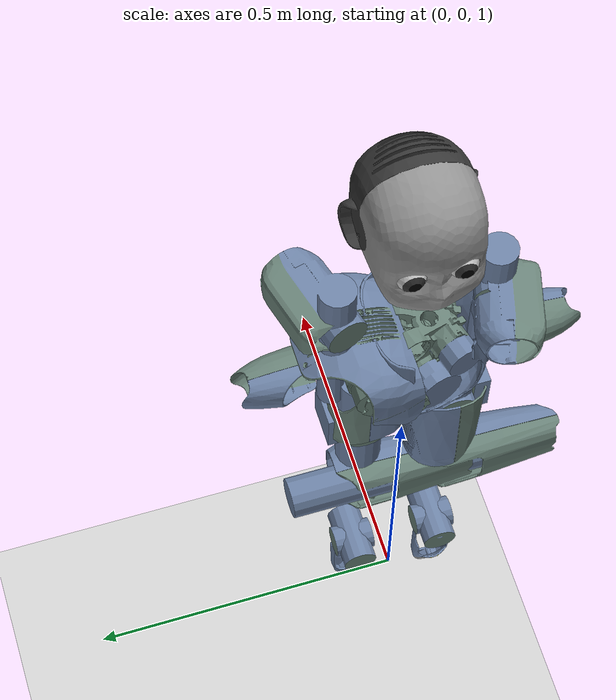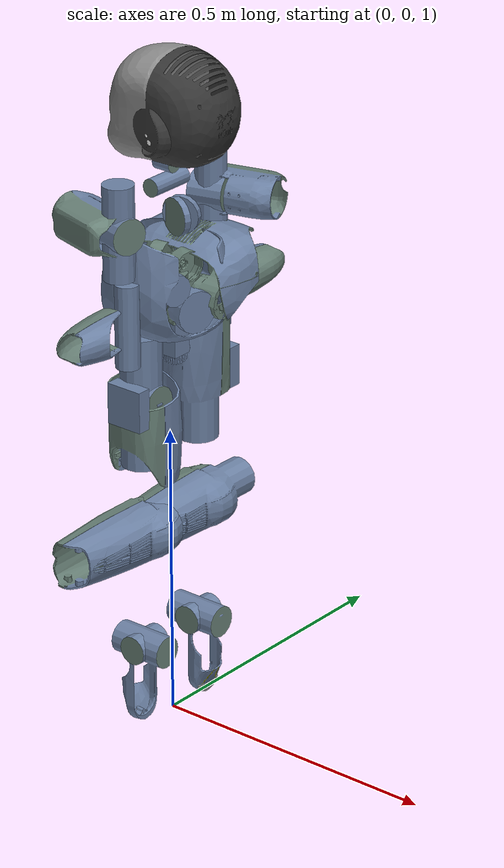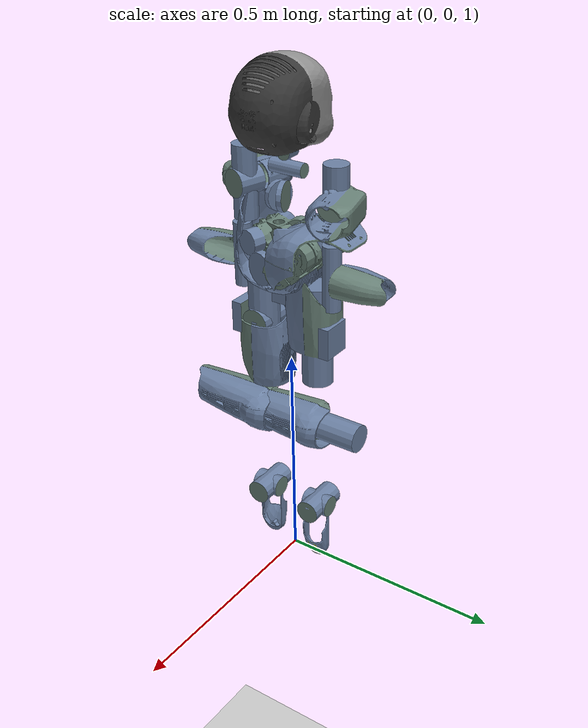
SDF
<?xml version="1.0" ?>
<sdf version="1.6">
    <world name="default">
        <physics default="true" type="dart">
            <!-- Run the simulation at real-time -->
            <real_time_factor>1</real_time_factor>
            <max_step_size>0.001</max_step_size>
        </physics>
        <plugin
                filename="libignition-gazebo-physics-system.so"
                name="ignition::gazebo::systems::Physics">
        </plugin>
        <plugin
                filename="libignition-gazebo-user-commands-system.so"
                name="ignition::gazebo::systems::UserCommands">
        </plugin>
        <plugin
                filename="libignition-gazebo-scene-broadcaster-system.so"
                name="ignition::gazebo::systems::SceneBroadcaster">
        </plugin>
        <plugin
                filename="libignition-gazebo-contact-system.so"
                name="ignition::gazebo::systems::Contact">
        </plugin>

        <gui fullscreen="0">
            <!-- 3D scene -->
            <plugin filename="GzScene3D" name="3D View">
                <ignition-gui>
                    <title>3D View</title>
                    <property type="bool" key="showTitleBar">false</property>
                    <property type="string" key="state">docked</property>
                </ignition-gui>
                <engine>ogre</engine>
                <scene>scene</scene>
                <ambient_light>0.4 0.4 0.4</ambient_light>
                <background_color>0.8 0.8 0.8</background_color>
                <camera_pose>-6 0 6 0 0.5 0</camera_pose>
                <service>/world/default/scene/info</service>
                <pose_topic>/world/default/pose/info</pose_topic>
            </plugin>

            <!-- World control -->
            <plugin filename="WorldControl" name="World control">
                <ignition-gui>
                    <title>World control</title>
                    <property type="bool" key="showTitleBar">false</property>
                    <property type="bool" key="resizable">false</property>
                    <property type="double" key="height">72</property>
                    <property type="double" key="width">121</property>
                    <property type="double" key="z">1</property>
                    <property type="string" key="state">floating</property>
                    <anchors target="3D View">
                        <line own="left" target="left"/>
                        <line own="bottom" target="bottom"/>
                    </anchors>
                </ignition-gui>
                <play_pause>true</play_pause>
                <step>true</step>
                <start_paused>true</start_paused>
                <service>/world/default/control</service>
                <stats_topic>/world/default/stats</stats_topic>
            </plugin>

            <!-- World statistics -->
            <plugin filename="WorldStats" name="World stats">
                <ignition-gui>
                    <title>World stats</title>
                    <property type="bool" key="showTitleBar">false</property>
                    <property type="bool" key="resizable">false</property>
                    <property type="double" key="height">110</property>
                    <property type="double" key="width">290</property>
                    <property type="double" key="z">1</property>
                    <property type="string" key="state">floating</property>
                    <anchors target="3D View">
                        <line own="right" target="right"/>
                        <line own="bottom" target="bottom"/>
                    </anchors>
                </ignition-gui>
                <sim_time>true</sim_time>
                <real_time>true</real_time>
                <real_time_factor>true</real_time_factor>
                <iterations>true</iterations>
                <topic>/world/default/stats</topic>
            </plugin>
        </gui>

        <light type="directional" name="sun">
            <cast_shadows>true</cast_shadows>
            <pose>10 0 3 0 0 0</pose>
            <diffuse>0.8 0.8 0.8 1</diffuse>
            <specular>0.2 0.2 0.2 1</specular>
            <attenuation>
                <range>1000</range>
                <constant>0.9</constant>
                <linear>0.01</linear>
                <quadratic>0.001</quadratic>
            </attenuation>
            <direction>0.75 0.075 -0.667</direction>
        </light>

        <model name="ground_plane">
            <static>true</static>
            <link name="link">
                <collision name="collision">
                    <geometry>
                        <plane>
                            <normal>0 0 1</normal>
                        </plane>
                    </geometry>
                    <surface>
                        <friction>
                            <ode>
                                <mu>100</mu>
                                <mu2>50</mu2>
                            </ode>
                        </friction>
                    </surface>
                </collision>
                <visual name="visual">
                    <geometry>
                        <plane>
                            <normal>0 0 1</normal>
                            <size>100 100</size>
                        </plane>
                    </geometry>
                    <material>
                        <ambient>0.8 0.8 0.8 1</ambient>
                        <diffuse>0.8 0.8 0.8 1</diffuse>
                        <specular>0.8 0.8 0.8 1</specular>
                    </material>
                </visual>
            </link>
        </model>

        <include>
            <pose>0 0 1.0 0 0 0</pose>
            <uri>iCubGazebo</uri>
        </include>

    </world>
</sdf>
